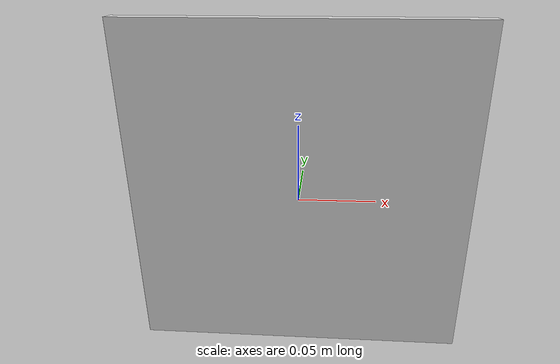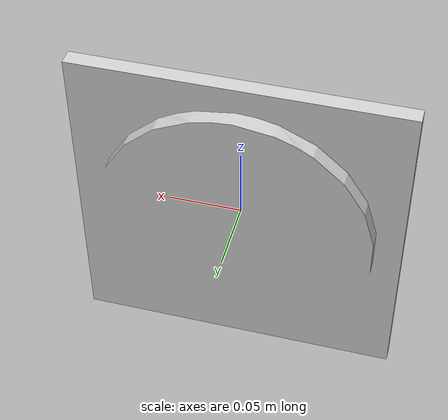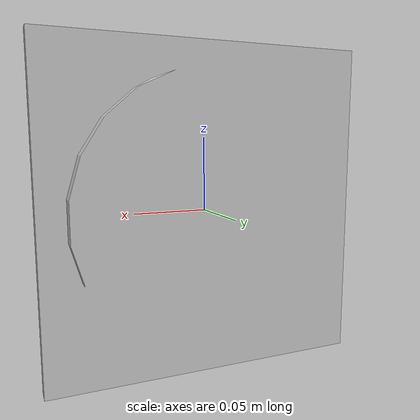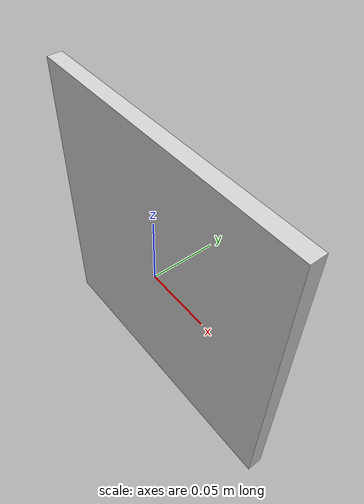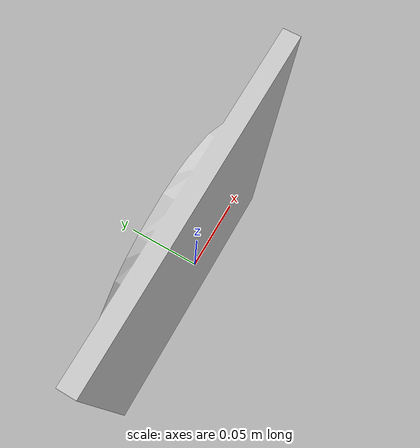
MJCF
<mujoco model="ur10e_plate">
  <default>
    <default class="visual">
      <geom group="2" type="mesh" contype="0" conaffinity="0"/>
    </default>
    <default class="collision">
      <geom group="3" type="mesh"/>
    </default>
  </default>
  <asset>
    <material name="material_ur10e_plate_0" specular="0.20000000000000004" shininess="1.0" rgba="0.80000000 0.80000000 0.80000000 1.0"/>
    <mesh file="ur10e_plate.obj"/>
  </asset>
  <worldbody>
    <body name="ur10e_plate">
      <geom material="material_ur10e_plate_0" mesh="ur10e_plate" class="visual"/>
      <geom mesh="ur10e_plate" class="collision"/>
    </body>
  </worldbody>
</mujoco>
